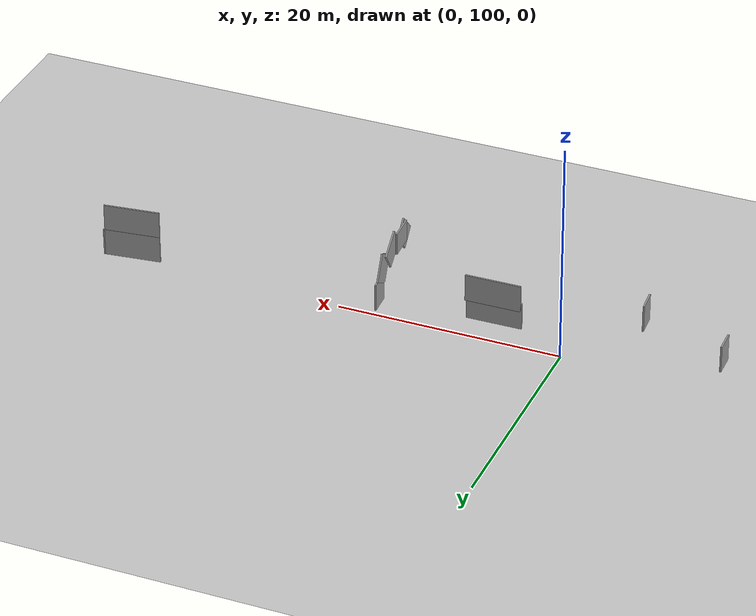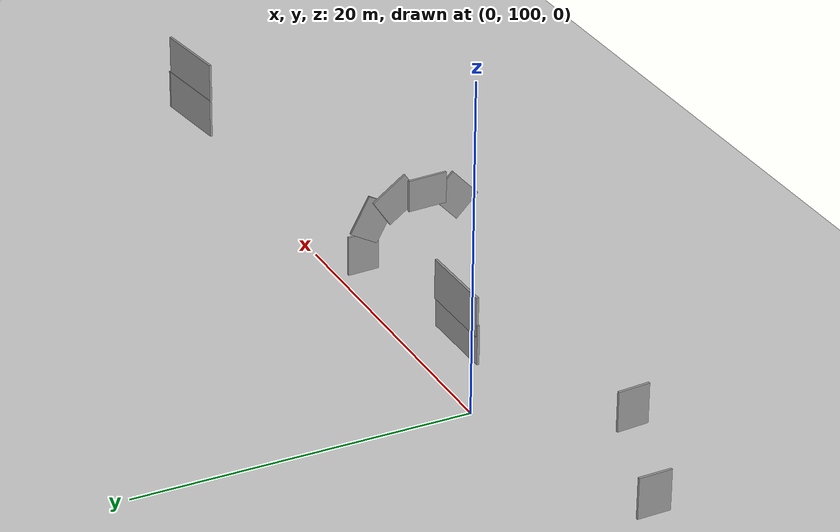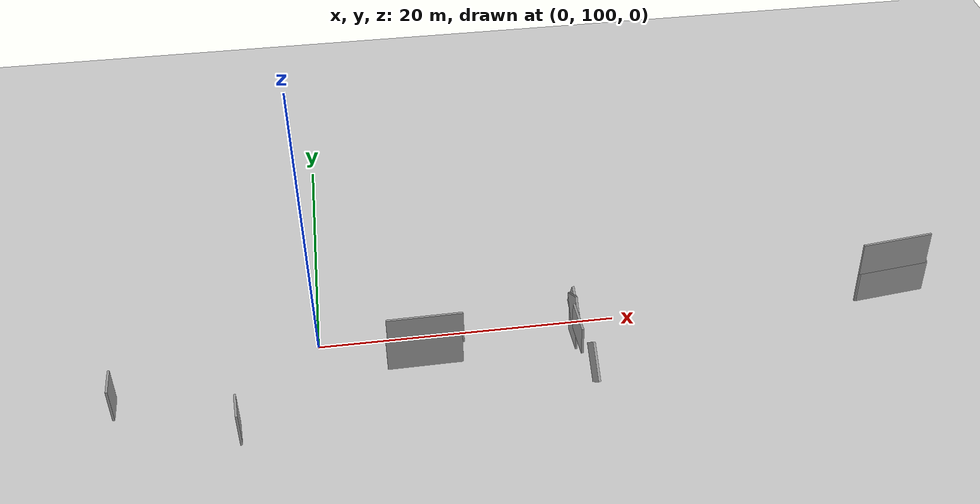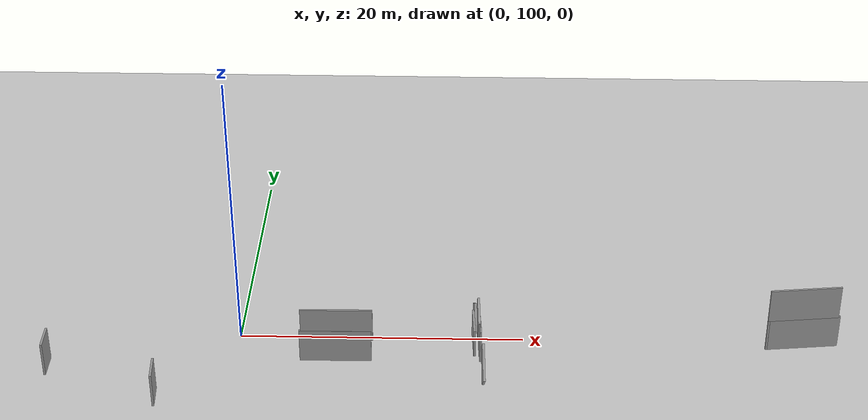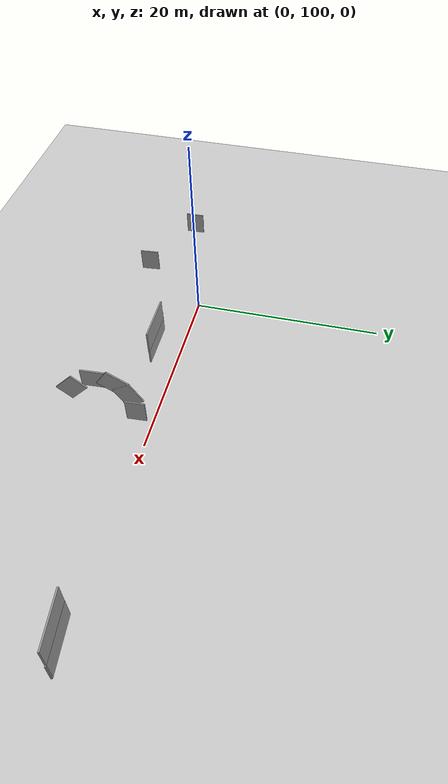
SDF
<sdf version="1.6">
 <world name="default">
  <model name="ground_plane">
   <static>1</static>
   <link name="link">
    <collision name="collision">
     <geometry><plane><normal>0 0 1</normal><size>100 100</size></plane></geometry>
     <surface><friction><ode><mu>100</mu><mu2>50</mu2></ode></friction></surface>
    </collision>
    <visual name="visual">
     <cast_shadows>0</cast_shadows>
     <geometry><plane><normal>0 0 1</normal><size>100 100</size></plane></geometry>
     <material>
      <script><uri>file://media/materials/scripts/gazebo.material</uri><name>Gazebo/Grey</name></script>
     </material>
    </visual>
   </link>
  </model>
  <model name="2mWall_10_clone">
   <pose>16.9834 98.3399 0 0 0 -1.5162</pose>
   <link name="Wall_0">
    <collision name="Wall_0_Collision">
     <geometry><box><size>2 0.15 2.5</size></box></geometry>
     <pose>0 0 1.25 0 -0 0</pose>
    </collision>
    <visual name="Wall_0_Visual">
     <pose>0 0 1.25 0 -0 0</pose>
     <geometry><box><size>2 0.15 2.5</size></box></geometry>
     <material>
      <script><uri>file://media/materials/scripts/gazebo.material</uri><name>Gazebo/Grey</name></script>
      <ambient>1 1 1 1</ambient>
     </material>
     <meta><layer>0</layer></meta>
    </visual>
   </link>
   <static>1</static>
  </model>
  <model name="2mWall_10_clone_0">
   <pose>16.8368 98.3987 2.26777 0 0.520041 -1.5162</pose>
   <link name="Wall_0">
    <collision name="Wall_0_Collision">
     <geometry><box><size>2 0.15 2.5</size></box></geometry>
     <pose>0 0 1.25 0 -0 0</pose>
    </collision>
    <visual name="Wall_0_Visual">
     <pose>0 0 1.25 0 -0 0</pose>
     <geometry><box><size>2 0.15 2.5</size></box></geometry>
     <material>
      <script><uri>file://media/materials/scripts/gazebo.material</uri><name>Gazebo/Grey</name></script>
      <ambient>1 1 1 1</ambient>
     </material>
     <meta><layer>0</layer></meta>
    </visual>
   </link>
   <static>1</static>
  </model>
  <model name="2mWall_10_clone_0_clone">
   <pose>17.2796 91.409 2.64511 -0 -0.760861 -1.5162</pose>
   <link name="Wall_0">
    <collision name="Wall_0_Collision">
     <geometry><box><size>2 0.15 2.5</size></box></geometry>
     <pose>0 0 1.25 0 -0 0</pose>
    </collision>
    <visual name="Wall_0_Visual">
     <pose>0 0 1.25 0 -0 0</pose>
     <geometry><box><size>2 0.15 2.5</size></box></geometry>
     <material>
      <script><uri>file://media/materials/scripts/gazebo.material</uri><name>Gazebo/Grey</name></script>
      <ambient>1 1 1 1</ambient>
     </material>
     <meta><layer>0</layer></meta>
    </visual>
   </link>
   <static>1</static>
  </model>
  <model name="2mWall_10_clone_0_clone_clone">
   <pose>16.5072 95.6413 4.55309 4e-06 1.56464 -1.5162</pose>
   <link name="Wall_0">
    <collision name="Wall_0_Collision">
     <geometry><box><size>2 0.15 2.5</size></box></geometry>
     <pose>0 0 1.25 0 -0 0</pose>
    </collision>
    <visual name="Wall_0_Visual">
     <pose>0 0 1.25 0 -0 0</pose>
     <geometry><box><size>2 0.15 2.5</size></box></geometry>
     <material>
      <script><uri>file://media/materials/scripts/gazebo.material</uri><name>Gazebo/Grey</name></script>
      <ambient>1 1 1 1</ambient>
     </material>
     <meta><layer>0</layer></meta>
    </visual>
   </link>
   <static>1</static>
  </model>
  <model name="2mWall_10_clone_0_clone_clone_clone">
   <pose>16.5894 97.3522 3.74124 -0 0.981697 -1.5162</pose>
   <link name="Wall_0">
    <collision name="Wall_0_Collision">
     <geometry><box><size>2 0.15 2.5</size></box></geometry>
     <pose>0 0 1.25 0 -0 0</pose>
    </collision>
    <visual name="Wall_0_Visual">
     <pose>0 0 1.25 0 -0 0</pose>
     <geometry><box><size>2 0.15 2.5</size></box></geometry>
     <material>
      <script><uri>file://media/materials/scripts/gazebo.material</uri><name>Gazebo/Grey</name></script>
      <ambient>1 1 1 1</ambient>
     </material>
     <meta><layer>0</layer></meta>
    </visual>
   </link>
   <static>1</static>
  </model>
  <model name="2mWall_29">
   <pose>-13.0043 96.0747 0 0 0 -1.54417</pose>
   <link name="Wall_0">
    <collision name="Wall_0_Collision">
     <geometry><box><size>2 0.15 2.5</size></box></geometry>
     <pose>0 0 1.25 0 -0 0</pose>
    </collision>
    <visual name="Wall_0_Visual">
     <pose>0 0 1.25 0 -0 0</pose>
     <geometry><box><size>2 0.15 2.5</size></box></geometry>
     <material>
      <script><uri>file://media/materials/scripts/gazebo.material</uri><name>Gazebo/Grey</name></script>
      <ambient>1 1 1 1</ambient>
     </material>
     <meta><layer>0</layer></meta>
    </visual>
   </link>
   <static>1</static>
  </model>
  <model name="2mWall_30">
   <pose>-5.02114 92.7921 0 0 0 -1.49061</pose>
   <link name="Wall_0">
    <collision name="Wall_0_Collision">
     <geometry><box><size>2 0.15 2.5</size></box></geometry>
     <pose>0 0 1.25 0 -0 0</pose>
    </collision>
    <visual name="Wall_0_Visual">
     <pose>0 0 1.25 0 -0 0</pose>
     <geometry><box><size>2 0.15 2.5</size></box></geometry>
     <material>
      <script><uri>file://media/materials/scripts/gazebo.material</uri><name>Gazebo/Grey</name></script>
      <ambient>1 1 1 1</ambient>
     </material>
     <meta><layer>0</layer></meta>
    </visual>
   </link>
   <static>1</static>
  </model>
  <model name="5mWall_1_clone_0_clone">
   <pose>6.95678 97.2917 0 0 0 -1.55894</pose>
   <link name="Wall_0">
    <collision name="Wall_0_Collision">
     <geometry><box><size>5 0.15 2.5</size></box></geometry>
     <pose>0 0 1.25 0 -0 0</pose>
    </collision>
    <visual name="Wall_0_Visual">
     <pose>0 0 1.25 0 -0 0</pose>
     <geometry><box><size>5 0.15 2.5</size></box></geometry>
     <material>
      <script><uri>file://media/materials/scripts/gazebo.material</uri><name>Gazebo/Grey</name></script>
      <ambient>1 1 1 1</ambient>
     </material>
     <meta><layer>0</layer></meta>
    </visual>
    <pose>0 -0 0 0 -0 1.5708</pose>
   </link>
   <static>1</static>
  </model>
  <model name="5mWall_1_clone_0_clone_clone">
   <pose>7.07746 97.312 1.71814 0 0 -1.55894</pose>
   <link name="Wall_0">
    <collision name="Wall_0_Collision">
     <geometry><box><size>5 0.15 2.5</size></box></geometry>
     <pose>0 0 1.25 0 -0 0</pose>
    </collision>
    <visual name="Wall_0_Visual">
     <pose>0 0 1.25 0 -0 0</pose>
     <geometry><box><size>5 0.15 2.5</size></box></geometry>
     <material>
      <script><uri>file://media/materials/scripts/gazebo.material</uri><name>Gazebo/Grey</name></script>
      <ambient>1 1 1 1</ambient>
     </material>
     <meta><layer>0</layer></meta>
    </visual>
    <pose>0 -0 0 0 -0 1.5708</pose>
   </link>
   <static>1</static>
  </model>
  <model name="5mWall_1">
   <pose>39.5062 99.6041 2.43443 0 -0 1.6884</pose>
   <link name="Wall_0">
    <collision name="Wall_0_Collision">
     <geometry><box><size>5 0.15 2.5</size></box></geometry>
     <pose>0 0 1.25 0 -0 0</pose>
    </collision>
    <visual name="Wall_0_Visual">
     <pose>0 0 1.25 0 -0 0</pose>
     <geometry><box><size>5 0.15 2.5</size></box></geometry>
     <material>
      <script><uri>file://media/materials/scripts/gazebo.material</uri><name>Gazebo/Grey</name></script>
      <ambient>1 1 1 1</ambient>
     </material>
     <meta><layer>0</layer></meta>
    </visual>
    <pose>0 -0 0 0 -0 1.5708</pose>
   </link>
   <static>1</static>
  </model>
  <model name="5mWall_1_clone">
   <pose>39.5116 99.6278 0 0 -0 1.6884</pose>
   <link name="Wall_0">
    <collision name="Wall_0_Collision">
     <geometry><box><size>5 0.15 2.5</size></box></geometry>
     <pose>0 0 1.25 0 -0 0</pose>
    </collision>
    <visual name="Wall_0_Visual">
     <pose>0 0 1.25 0 -0 0</pose>
     <geometry><box><size>5 0.15 2.5</size></box></geometry>
     <material>
      <script><uri>file://media/materials/scripts/gazebo.material</uri><name>Gazebo/Grey</name></script>
      <ambient>1 1 1 1</ambient>
     </material>
     <meta><layer>0</layer></meta>
    </visual>
    <pose>0 -0 0 0 -0 1.5708</pose>
   </link>
   <static>1</static>
  </model>
  <model name="5mWall_1_clone_clone">
   <pose>39.6436 99.6409 0 0 -0 1.6884</pose>
   <link name="Wall_0">
    <collision name="Wall_0_Collision">
     <geometry><box><size>5 0.15 2.5</size></box></geometry>
     <pose>0 0 1.25 0 -0 0</pose>
    </collision>
    <visual name="Wall_0_Visual">
     <pose>0 0 1.25 0 -0 0</pose>
     <geometry><box><size>5 0.15 2.5</size></box></geometry>
     <material>
      <script><uri>file://media/materials/scripts/gazebo.material</uri><name>Gazebo/Grey</name></script>
      <ambient>1 1 1 1</ambient>
     </material>
     <meta><layer>0</layer></meta>
    </visual>
    <pose>0 -0 0 0 -0 1.5708</pose>
   </link>
   <static>1</static>
  </model>
 </world>
</sdf>
